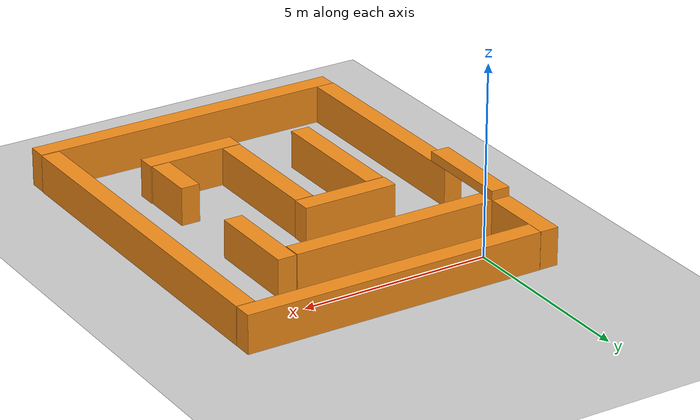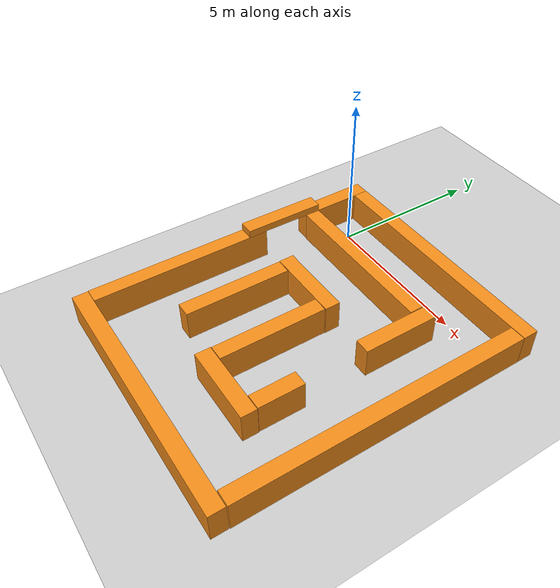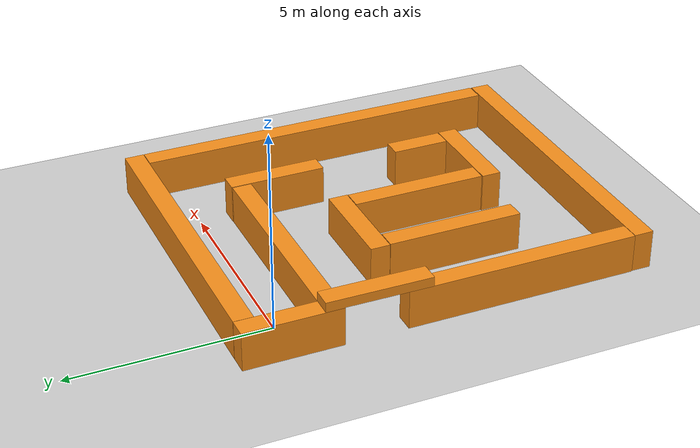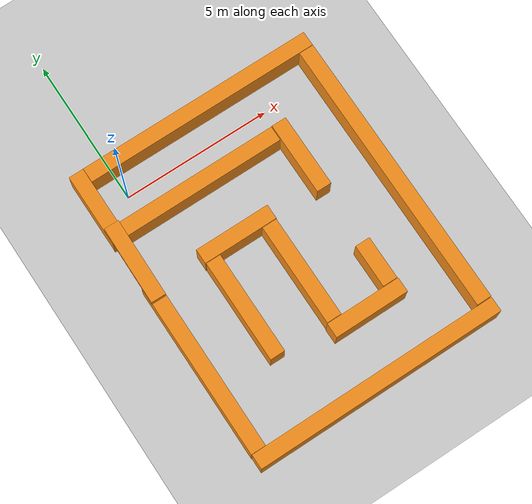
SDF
<sdf version="1.6">
 <world name="default">
  <light name="sun" type="directional">
   <pose>0 0 10 0 -0 0</pose>
   <diffuse>0.8 0.8 0.8 1</diffuse>
   <specular>0.2 0.2 0.2 1</specular>
   <attenuation>
    <range>1000</range>
    <constant>0.9</constant>
    <linear>0.01</linear>
    <quadratic>0.001</quadratic>
   </attenuation>
   <direction>-0.5 0.1 -0.9</direction>
  </light>
  <model name="ground_plane">
   <static>1</static>
   <link name="link">
    <collision name="collision">
     <geometry><plane><normal>0 0 1</normal><size>100 100</size></plane></geometry>
     <surface>
      <contact><collide_bitmask>65535</collide_bitmask></contact>
      <friction><ode><mu>100</mu><mu2>50</mu2></ode></friction>
     </surface>
    </collision>
    <visual name="visual">
     <cast_shadows>0</cast_shadows>
     <geometry><plane><normal>0 0 1</normal><size>100 100</size></plane></geometry>
     <material>
      <script><uri>file://media/materials/scripts/gazebo.material</uri><name>Gazebo/Grey</name></script>
     </material>
    </visual>
   </link>
  </model>
  <gravity>0 0 -9.8</gravity>
  <magnetic_field>6e-06 2.3e-05 -4.2e-05</magnetic_field>
  <atmosphere type="adiabatic"/>
  <physics name="default_physics" default="0" type="ode">
   <max_step_size>0.001</max_step_size>
   <real_time_factor>1</real_time_factor>
   <real_time_update_rate>1000</real_time_update_rate>
  </physics>
  <scene><ambient>0.4 0.4 0.4 1</ambient><background>0.7 0.7 0.7 1</background><shadows>1</shadows></scene>
  <spherical_coordinates>
   <surface_model>EARTH_WGS84</surface_model>
   <latitude_deg>0</latitude_deg>
   <longitude_deg>0</longitude_deg>
   <elevation>0</elevation>
   <heading_deg>0</heading_deg>
  </spherical_coordinates>
  <model name="unit_box_clone_0_clone_0">
   <static>1</static>
   <pose>-0.995111 -2.09872 1.12336 -1e-05 -5e-05 -1.58167</pose>
   <link name="link">
    <inertial>
     <mass>1</mass>
     <inertia>
      <ixx>0.166667</ixx>
      <ixy>0</ixy>
      <ixz>0</ixz>
      <iyy>0.166667</iyy>
      <iyz>0</iyz>
      <izz>0.166667</izz>
     </inertia>
    </inertial>
    <collision name="collision"><geometry><box><size>2.66432 0.498062 0.246064</size></box></geometry></collision>
    <visual name="visual">
     <geometry><box><size>2.66432 0.498062 0.246064</size></box></geometry>
     <material>
      <script><name>Gazebo/Orange</name><uri>file://media/materials/scripts/gazebo.material</uri></script>
     </material>
    </visual>
   </link>
  </model>
  <model name="unit_box_clone_1">
   <static>1</static>
   <pose>1.99477 -1.01619 0.499784 0 6.9e-05 -0.000578</pose>
   <link name="link">
    <inertial>
     <mass>1</mass>
     <inertia>
      <ixx>0.166667</ixx>
      <ixy>0</ixy>
      <ixz>0</ixz>
      <iyy>0.166667</iyy>
      <iyz>0</iyz>
      <izz>0.166667</izz>
     </inertia>
    </inertial>
    <collision name="collision"><geometry><box><size>5.46092 0.498062 1</size></box></geometry></collision>
    <visual name="visual">
     <geometry><box><size>5.46092 0.498062 1</size></box></geometry>
     <material>
      <script><name>Gazebo/Orange</name><uri>file://media/materials/scripts/gazebo.material</uri></script>
     </material>
    </visual>
   </link>
  </model>
  <model name="unit_box_clone_1_clone">
   <static>1</static>
   <pose>5 -2 0.499661 -6.9e-05 -0 -1.57137</pose>
   <link name="link">
    <inertial>
     <mass>1</mass>
     <inertia>
      <ixx>0.166667</ixx>
      <ixy>0</ixy>
      <ixz>0</ixz>
      <iyy>0.166667</iyy>
      <iyz>0</iyz>
      <izz>0.166667</izz>
     </inertia>
    </inertial>
    <collision name="collision"><geometry><box><size>2.47878 0.498062 1</size></box></geometry></collision>
    <visual name="visual">
     <geometry><box><size>2.47878 0.498062 1</size></box></geometry>
     <material>
      <script><name>Gazebo/Orange</name><uri>file://media/materials/scripts/gazebo.material</uri></script>
     </material>
    </visual>
   </link>
  </model>
  <model name="unit_box_clone_1_clone_0">
   <static>1</static>
   <pose>3.25202 0.991041 0.499731 0 6.9e-05 -0.000578</pose>
   <link name="link">
    <inertial>
     <mass>1</mass>
     <inertia>
      <ixx>0.166667</ixx>
      <ixy>0</ixy>
      <ixz>0</ixz>
      <iyy>0.166667</iyy>
      <iyz>0</iyz>
      <izz>0.166667</izz>
     </inertia>
    </inertial>
    <collision name="collision"><geometry><box><size>7.99508 0.498062 1</size></box></geometry></collision>
    <visual name="visual">
     <geometry><box><size>7.99508 0.498062 1</size></box></geometry>
     <material>
      <script><name>Gazebo/Orange</name><uri>file://media/materials/scripts/gazebo.material</uri></script>
     </material>
    </visual>
   </link>
  </model>
  <model name="unit_box_clone_1_clone_clone">
   <static>1</static>
   <pose>-1 0 0.499815 -6.9e-05 -0 -1.57137</pose>
   <link name="link">
    <inertial>
     <mass>1</mass>
     <inertia>
      <ixx>0.166667</ixx>
      <ixy>0</ixy>
      <ixz>0</ixz>
      <iyy>0.166667</iyy>
      <iyz>0</iyz>
      <izz>0.166667</izz>
     </inertia>
    </inertial>
    <collision name="collision"><geometry><box><size>2.47878 0.498062 1</size></box></geometry></collision>
    <visual name="visual">
     <geometry><box><size>2.47878 0.498062 1</size></box></geometry>
     <material>
      <script><name>Gazebo/Orange</name><uri>file://media/materials/scripts/gazebo.material</uri></script>
     </material>
    </visual>
   </link>
  </model>
  <model name="unit_box_clone_1_clone_clone_0">
   <static>1</static>
   <pose>5 -6 0.499673 -6.9e-05 -0 -1.57137</pose>
   <link name="link">
    <inertial>
     <mass>1</mass>
     <inertia>
      <ixx>0.166667</ixx>
      <ixy>0</ixy>
      <ixz>0</ixz>
      <iyy>0.166667</iyy>
      <iyz>0</iyz>
      <izz>0.166667</izz>
     </inertia>
    </inertial>
    <collision name="collision"><geometry><box><size>1.46747 0.498062 1</size></box></geometry></collision>
    <visual name="visual">
     <geometry><box><size>1.46747 0.498062 1</size></box></geometry>
     <material>
      <script><name>Gazebo/Orange</name><uri>file://media/materials/scripts/gazebo.material</uri></script>
     </material>
    </visual>
   </link>
  </model>
  <model name="unit_box_clone_1_clone_0_clone">
   <static>1</static>
   <pose>2 -3 0.499792 0 6.9e-05 -0.000578</pose>
   <link name="link">
    <inertial>
     <mass>1</mass>
     <inertia>
      <ixx>0.166667</ixx>
      <ixy>0</ixy>
      <ixz>0</ixz>
      <iyy>0.166667</iyy>
      <iyz>0</iyz>
      <izz>0.166667</izz>
     </inertia>
    </inertial>
    <collision name="collision"><geometry><box><size>2.53398 0.498062 1</size></box></geometry></collision>
    <visual name="visual">
     <geometry><box><size>2.53398 0.498062 1</size></box></geometry>
     <material>
      <script><name>Gazebo/Orange</name><uri>file://media/materials/scripts/gazebo.material</uri></script>
     </material>
    </visual>
   </link>
  </model>
  <model name="unit_box_clone_1_clone_clone_0_clone">
   <static>1</static>
   <pose>3 -5 0.499672 -6.9e-05 -0 -1.57137</pose>
   <link name="link">
    <inertial>
     <mass>1</mass>
     <inertia>
      <ixx>0.166667</ixx>
      <ixy>0</ixy>
      <ixz>0</ixz>
      <iyy>0.166667</iyy>
      <iyz>0</iyz>
      <izz>0.166667</izz>
     </inertia>
    </inertial>
    <collision name="collision"><geometry><box><size>3.46791 0.498062 0.999999</size></box></geometry></collision>
    <visual name="visual">
     <geometry><box><size>3.46791 0.498062 0.999999</size></box></geometry>
     <material>
      <script><name>Gazebo/Orange</name><uri>file://media/materials/scripts/gazebo.material</uri></script>
     </material>
    </visual>
   </link>
  </model>
  <model name="unit_box_clone_1_clone_0_clone_clone">
   <static>1</static>
   <pose>4 -7 0.49977 0 6.9e-05 -0.000578</pose>
   <link name="link">
    <inertial>
     <mass>1</mass>
     <inertia>
      <ixx>0.166667</ixx>
      <ixy>0</ixy>
      <ixz>0</ixz>
      <iyy>0.166667</iyy>
      <iyz>0</iyz>
      <izz>0.166667</izz>
     </inertia>
    </inertial>
    <collision name="collision"><geometry><box><size>2.53398 0.498062 1</size></box></geometry></collision>
    <visual name="visual">
     <geometry><box><size>2.53398 0.498062 1</size></box></geometry>
     <material>
      <script><name>Gazebo/Orange</name><uri>file://media/materials/scripts/gazebo.material</uri></script>
     </material>
    </visual>
   </link>
  </model>
  <model name="unit_box_clone_1_clone_clone_1">
   <static>1</static>
   <pose>7 -4 0.499666 -6.9e-05 -0 -1.57137</pose>
   <link name="link">
    <inertial>
     <mass>1</mass>
     <inertia>
      <ixx>0.166667</ixx>
      <ixy>0</ixy>
      <ixz>0</ixz>
      <iyy>0.166667</iyy>
      <iyz>0</iyz>
      <izz>0.166667</izz>
     </inertia>
    </inertial>
    <collision name="collision"><geometry><box><size>9.45237 0.498062 1</size></box></geometry></collision>
    <visual name="visual">
     <geometry><box><size>9.45237 0.498062 1</size></box></geometry>
     <material>
      <script><name>Gazebo/Orange</name><uri>file://media/materials/scripts/gazebo.material</uri></script>
     </material>
    </visual>
   </link>
  </model>
  <model name="unit_box_clone_1_clone_0_clone_clone_clone">
   <static>1</static>
   <pose>3 -9 0.499765 0 6.9e-05 -0.000578</pose>
   <link name="link">
    <inertial>
     <mass>1</mass>
     <inertia>
      <ixx>0.166667</ixx>
      <ixy>0</ixy>
      <ixz>0</ixz>
      <iyy>0.166667</iyy>
      <iyz>0</iyz>
      <izz>0.166667</izz>
     </inertia>
    </inertial>
    <collision name="collision"><geometry><box><size>8.46879 0.498062 1</size></box></geometry></collision>
    <visual name="visual">
     <geometry><box><size>8.46879 0.498062 1</size></box></geometry>
     <material>
      <script><name>Gazebo/Orange</name><uri>file://media/materials/scripts/gazebo.material</uri></script>
     </material>
    </visual>
   </link>
  </model>
  <model name="unit_box_clone_1_clone_clone_0_clone_clone">
   <static>1</static>
   <pose>-0.999871 -5.77594 0.499672 -6.9e-05 -0 -1.57137</pose>
   <link name="link">
    <inertial>
     <mass>1</mass>
     <inertia>
      <ixx>0.166667</ixx>
      <ixy>0</ixy>
      <ixz>0</ixz>
      <iyy>0.166667</iyy>
      <iyz>0</iyz>
      <izz>0.166667</izz>
     </inertia>
    </inertial>
    <collision name="collision"><geometry><box><size>5.92837 0.498062 0.999999</size></box></geometry></collision>
    <visual name="visual">
     <geometry><box><size>5.92837 0.498062 0.999999</size></box></geometry>
     <material>
      <script><name>Gazebo/Orange</name><uri>file://media/materials/scripts/gazebo.material</uri></script>
     </material>
    </visual>
   </link>
  </model>
  <model name="unit_box_clone_1_clone_clone_0_clone_clone_0">
   <static>1</static>
   <pose>1 -5 0.499672 -6.9e-05 -0 -1.57137</pose>
   <link name="link">
    <inertial>
     <mass>1</mass>
     <inertia>
      <ixx>0.166667</ixx>
      <ixy>0</ixy>
      <ixz>0</ixz>
      <iyy>0.166667</iyy>
      <iyz>0</iyz>
      <izz>0.166667</izz>
     </inertia>
    </inertial>
    <collision name="collision"><geometry><box><size>3.46791 0.498062 0.999999</size></box></geometry></collision>
    <visual name="visual">
     <geometry><box><size>3.46791 0.498062 0.999999</size></box></geometry>
     <material>
      <script><name>Gazebo/Orange</name><uri>file://media/materials/scripts/gazebo.material</uri></script>
     </material>
    </visual>
   </link>
  </model>
 </world>
</sdf>
